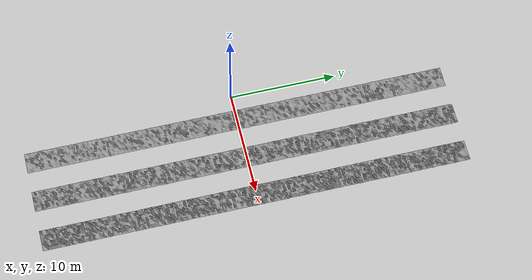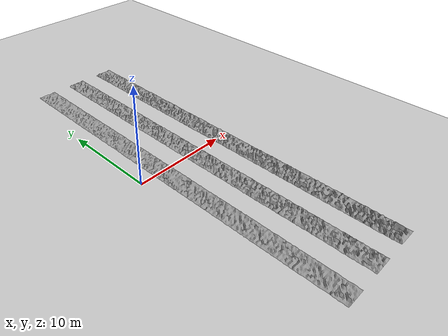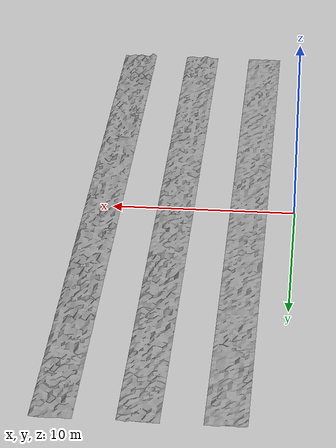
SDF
<sdf version='1.6'>
  <world name='default'>

    <!-- A global light source -->
    <include>
      <uri>model://sun</uri>
    </include>

    <!-- A ground plane -->
    <include>
      <uri>model://ground_plane</uri>
    </include>

    <!-- Custom physics settings -->
    <physics type='ode'>
      <max_step_size>0.0005</max_step_size>
      <real_time_factor>1</real_time_factor>
      <real_time_update_rate>2000</real_time_update_rate>
    </physics>

    <!-- The rocky model -->
    <include>
      <pose>6.5 0 0 0 0 0</pose>
      <uri>model://rocky3</uri>
    </include>

    <!-- Custom initial camera pose -->
    <gui fullscreen='0'>
      <camera name='user_camera'>
        <pose frame=''>13.5816 -16.4315 9.53389 0 0.395643 1.9842</pose>
        <view_controller>orbit</view_controller>
        <projection_type>perspective</projection_type>
      </camera>
    </gui>

  </world>
</sdf>

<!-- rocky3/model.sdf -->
<sdf version='1.6'>
  <model name='rocky3'>
    <link name='link_0'>
      <pose frame=''>-4 0 0 0 -0 0</pose>
      <inertial>
        <mass>1</mass>
        <inertia>
          <ixx>0.166667</ixx>
          <ixy>0</ixy>
          <ixz>0</ixz>
          <iyy>0.166667</iyy>
          <iyz>0</iyz>
          <izz>0.166667</izz>
        </inertia>
        <pose frame=''>0 0 0 0 -0 0</pose>
      </inertial>
      <gravity>1</gravity>
      <self_collide>0</self_collide>
      <kinematic>0</kinematic>
      <visual name='visual'>
        <pose frame=''>0 0 0 0 -0 0</pose>
        <geometry>
          <mesh>
            <uri>model://rocky3/meshes/rocky1.stl</uri>
            <scale>1 1 1</scale>
          </mesh>
        </geometry>
        <material>
          <lighting>1</lighting>
          <script>
            <uri>file://media/materials/scripts/gazebo.material</uri>
            <name>Gazebo/Grey</name>
          </script>
          <ambient>0.3 0.3 0.3 1</ambient>
          <diffuse>0.7 0.7 0.7 1</diffuse>
          <specular>0.01 0.01 0.01 1</specular>
          <emissive>0 0 0 1</emissive>
          <shader type='vertex'>
            <normal_map>__default__</normal_map>
          </shader>
        </material>
        <cast_shadows>1</cast_shadows>
        <transparency>0</transparency>
      </visual>
      <collision name='collision'>
        <laser_retro>0</laser_retro>
        <max_contacts>10</max_contacts>
        <pose frame=''>0 0 0 0 -0 0</pose>
        <geometry>
          <mesh>
            <uri>model://rocky3/meshes/rocky1.stl</uri>
          </mesh>
        </geometry>
        <surface>
          <friction>
            <ode>
              <mu>1</mu>
              <mu2>1</mu2>
              <fdir1>0 0 0</fdir1>
              <slip1>0</slip1>
              <slip2>0</slip2>
            </ode>
            <torsional>
              <coefficient>1</coefficient>
              <patch_radius>0</patch_radius>
              <surface_radius>0</surface_radius>
              <use_patch_radius>1</use_patch_radius>
              <ode>
                <slip>0</slip>
              </ode>
            </torsional>
          </friction>
          <bounce>
            <restitution_coefficient>0</restitution_coefficient>
            <threshold>1e+06</threshold>
          </bounce>
          <contact>
            <collide_without_contact>0</collide_without_contact>
            <collide_without_contact_bitmask>1</collide_without_contact_bitmask>
            <collide_bitmask>1</collide_bitmask>
            <ode>
              <soft_cfm>0</soft_cfm>
              <soft_erp>0.2</soft_erp>
              <kp>1e+13</kp>
              <kd>1</kd>
              <max_vel>0.01</max_vel>
              <min_depth>0</min_depth>
            </ode>
            <bullet>
              <split_impulse>1</split_impulse>
              <split_impulse_penetration_threshold>-0.01</split_impulse_penetration_threshold>
              <soft_cfm>0</soft_cfm>
              <soft_erp>0.2</soft_erp>
              <kp>1e+13</kp>
              <kd>1</kd>
            </bullet>
          </contact>
        </surface>
      </collision>
    </link>
    <link name='link_1'>
      <pose frame=''>0 0 0 0 -0 0</pose>
      <inertial>
        <mass>1</mass>
        <inertia>
          <ixx>0.166667</ixx>
          <ixy>0</ixy>
          <ixz>0</ixz>
          <iyy>0.166667</iyy>
          <iyz>0</iyz>
          <izz>0.166667</izz>
        </inertia>
        <pose frame=''>0 0 0 0 -0 0</pose>
      </inertial>
      <gravity>1</gravity>
      <self_collide>0</self_collide>
      <kinematic>0</kinematic>
      <visual name='visual'>
        <pose frame=''>0 0 0 0 -0 0</pose>
        <geometry>
          <mesh>
            <uri>model://rocky3/meshes/rocky2.stl</uri>
            <scale>1 1 1</scale>
          </mesh>
        </geometry>
        <material>
          <lighting>1</lighting>
          <script>
            <uri>file://media/materials/scripts/gazebo.material</uri>
            <name>Gazebo/Grey</name>
          </script>
          <ambient>0.3 0.3 0.3 1</ambient>
          <diffuse>0.7 0.7 0.7 1</diffuse>
          <specular>0.01 0.01 0.01 1</specular>
          <emissive>0 0 0 1</emissive>
          <shader type='vertex'>
            <normal_map>__default__</normal_map>
          </shader>
        </material>
        <cast_shadows>1</cast_shadows>
        <transparency>0</transparency>
      </visual>
      <collision name='collision'>
        <laser_retro>0</laser_retro>
        <max_contacts>10</max_contacts>
        <pose frame=''>0 0 0 0 -0 0</pose>
        <geometry>
          <mesh>
            <uri>model://rocky3/meshes/rocky2.stl</uri>
          </mesh>
        </geometry>
        <surface>
          <friction>
            <ode>
              <mu>1</mu>
              <mu2>1</mu2>
              <fdir1>0 0 0</fdir1>
              <slip1>0</slip1>
              <slip2>0</slip2>
            </ode>
            <torsional>
              <coefficient>1</coefficient>
              <patch_radius>0</patch_radius>
              <surface_radius>0</surface_radius>
              <use_patch_radius>1</use_patch_radius>
              <ode>
                <slip>0</slip>
              </ode>
            </torsional>
          </friction>
          <bounce>
            <restitution_coefficient>0</restitution_coefficient>
            <threshold>1e+06</threshold>
          </bounce>
          <contact>
            <collide_without_contact>0</collide_without_contact>
            <collide_without_contact_bitmask>1</collide_without_contact_bitmask>
            <collide_bitmask>1</collide_bitmask>
            <ode>
              <soft_cfm>0</soft_cfm>
              <soft_erp>0.2</soft_erp>
              <kp>1e+13</kp>
              <kd>1</kd>
              <max_vel>0.01</max_vel>
              <min_depth>0</min_depth>
            </ode>
            <bullet>
              <split_impulse>1</split_impulse>
              <split_impulse_penetration_threshold>-0.01</split_impulse_penetration_threshold>
              <soft_cfm>0</soft_cfm>
              <soft_erp>0.2</soft_erp>
              <kp>1e+13</kp>
              <kd>1</kd>
            </bullet>
          </contact>
        </surface>
      </collision>
    </link>
    <link name='link_2'>
      <pose frame=''>4 0 0 0 -0 0</pose>
      <inertial>
        <mass>1</mass>
        <inertia>
          <ixx>0.166667</ixx>
          <ixy>0</ixy>
          <ixz>0</ixz>
          <iyy>0.166667</iyy>
          <iyz>0</iyz>
          <izz>0.166667</izz>
        </inertia>
        <pose frame=''>0 0 0 0 -0 0</pose>
      </inertial>
      <gravity>1</gravity>
      <self_collide>0</self_collide>
      <kinematic>0</kinematic>
      <visual name='visual'>
        <pose frame=''>0 0 0 0 -0 0</pose>
        <geometry>
          <mesh>
            <uri>model://rocky3/meshes/rocky3.stl</uri>
            <scale>1 1 1</scale>
          </mesh>
        </geometry>
        <material>
          <lighting>1</lighting>
          <script>
            <uri>file://media/materials/scripts/gazebo.material</uri>
            <name>Gazebo/Grey</name>
          </script>
          <ambient>0.3 0.3 0.3 1</ambient>
          <diffuse>0.7 0.7 0.7 1</diffuse>
          <specular>0.01 0.01 0.01 1</specular>
          <emissive>0 0 0 1</emissive>
          <shader type='vertex'>
            <normal_map>__default__</normal_map>
          </shader>
        </material>
        <cast_shadows>1</cast_shadows>
        <transparency>0</transparency>
      </visual>
      <collision name='collision'>
        <laser_retro>0</laser_retro>
        <max_contacts>10</max_contacts>
        <pose frame=''>0 0 0 0 -0 0</pose>
        <geometry>
          <mesh>
            <uri>model://rocky3/meshes/rocky3.stl</uri>
          </mesh>
        </geometry>
        <surface>
          <friction>
            <ode>
              <mu>1</mu>
              <mu2>1</mu2>
              <fdir1>0 0 0</fdir1>
              <slip1>0</slip1>
              <slip2>0</slip2>
            </ode>
            <torsional>
              <coefficient>1</coefficient>
              <patch_radius>0</patch_radius>
              <surface_radius>0</surface_radius>
              <use_patch_radius>1</use_patch_radius>
              <ode>
                <slip>0</slip>
              </ode>
            </torsional>
          </friction>
          <bounce>
            <restitution_coefficient>0</restitution_coefficient>
            <threshold>1e+06</threshold>
          </bounce>
          <contact>
            <collide_without_contact>0</collide_without_contact>
            <collide_without_contact_bitmask>1</collide_without_contact_bitmask>
            <collide_bitmask>1</collide_bitmask>
            <ode>
              <soft_cfm>0</soft_cfm>
              <soft_erp>0.2</soft_erp>
              <kp>1e+13</kp>
              <kd>1</kd>
              <max_vel>0.01</max_vel>
              <min_depth>0</min_depth>
            </ode>
            <bullet>
              <split_impulse>1</split_impulse>
              <split_impulse_penetration_threshold>-0.01</split_impulse_penetration_threshold>
              <soft_cfm>0</soft_cfm>
              <soft_erp>0.2</soft_erp>
              <kp>1e+13</kp>
              <kd>1</kd>
            </bullet>
          </contact>
        </surface>
      </collision>
    </link>
    <static>1</static>
    <allow_auto_disable>1</allow_auto_disable>
  </model>
</sdf>
